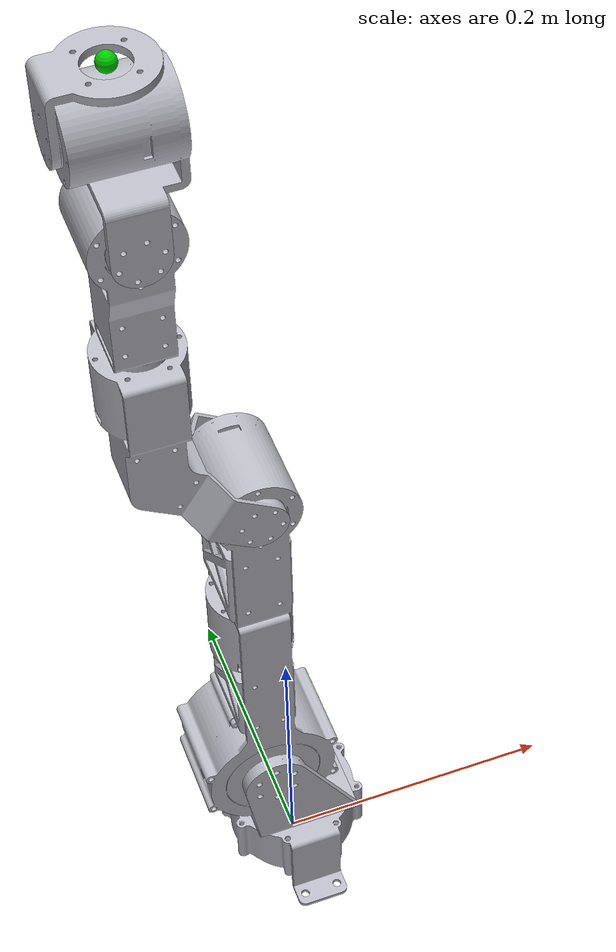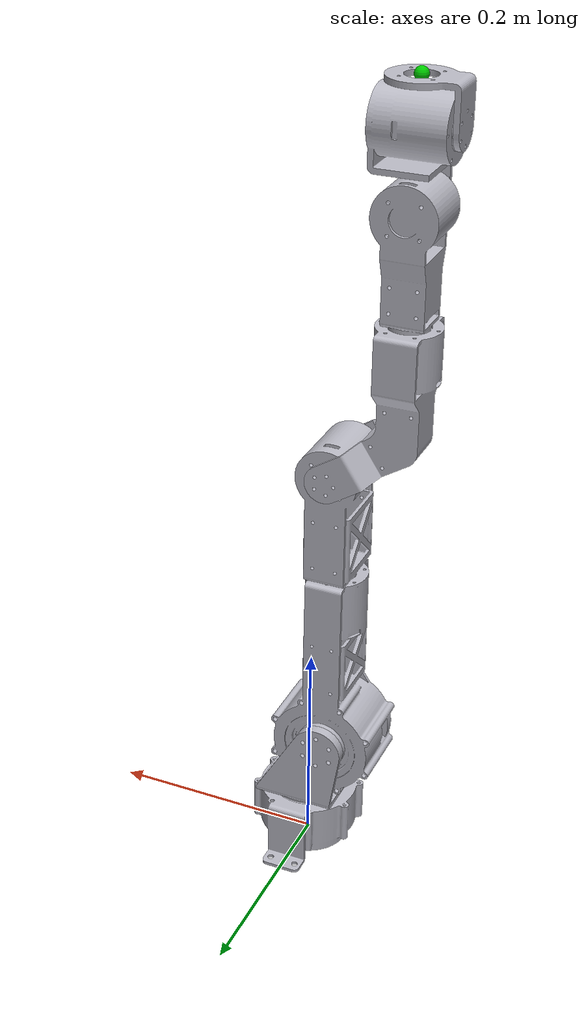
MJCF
<?xml version="1.0" encoding="utf-8"?>
<!-- MJCF model generated from robot.urdf. Distances are metres; angles are radians. -->
<mujoco model="h1arm">
  <!-- URDF rpy uses fixed-axis XYZ rotations. -->
  <compiler angle="radian" eulerseq="XYZ" meshdir="meshes"/>
  <option timestep="0.002" gravity="0 0 -9.81" integrator="implicitfast"/>

  <default>
    <joint damping="1" armature="0.01" limited="true"/>
    <geom type="mesh" contype="1" conaffinity="1" friction="0.8 0.01 0.001" rgba="0.72 0.72 0.76 1"/>
    <position forcelimited="true"/>
  </default>

  <asset>
    <mesh name="base_link_mesh" file="base_link.stl"/>
    <mesh name="Link_1_mesh" file="Link_1.stl"/>
    <mesh name="Link_2_mesh" file="Link_2.stl"/>
    <mesh name="Link_3_mesh" file="Link_3.stl"/>
    <mesh name="Link_4_mesh" file="Link_4.stl"/>
    <mesh name="Link_5_mesh" file="Link_5.stl"/>
    <mesh name="Link_6_mesh" file="Link_6.stl"/>
    <mesh name="Link_7_mesh" file="Link_7.stl"/>
  </asset>

  <worldbody>
    <body name="base_link">
      <inertial pos="0.0000558 -0.00005184 0.03162308" mass="0.92653116"
                fullinertia="0.00120513 0.00083041 0.00142156 0.0000005 0.00000107 -0.00000589"/>
      <geom mesh="base_link_mesh"/>
      <body name="Link_1" pos="0 -0.00001092 0.0566">
        <joint name="Joint_1" type="hinge" axis="0 0 1" range="-3.412 3.142"/>
        <inertial pos="-0.00939786 0.0000704 0.03350522" mass="0.64611621"
                  fullinertia="0.00122572 0.00078899 0.00098172 0.00000064 0.00017373 -0.00000161"/>
        <geom mesh="Link_1_mesh"/>
        <body name="Link_2" pos="-0.0235 0.0325 0.069" euler="-1.57079633 0 0">
          <joint name="Joint_2" type="hinge" axis="0 0 1" range="-1.571 1.571"/>
          <inertial pos="0.00000532 -0.06379929 -0.03408965" mass="2.60709084"
                    fullinertia="0.0149818 0.00230646 0.0150057 0.00000417 0.00000082 0.00026357"/>
          <geom mesh="Link_2_mesh"/>
          <body name="Link_3" pos="-0.00000018 -0.173 -0.03249939" euler="1.57079633 0 0">
            <joint name="Joint_3" type="hinge" axis="0 0 1" range="-3.142 3.142"/>
            <inertial pos="-0.00002259 -0.00043766 0.09074299" mass="1.36209612"
                      fullinertia="0.00228773 0.00202038 0.00082694 0.00000059 0.00000053 0.00001036"/>
            <geom mesh="Link_3_mesh"/>
            <body name="Link_4" pos="0 -0.031 0.108" euler="1.57079633 0 0">
              <joint name="Joint_4" type="hinge" axis="0 0 1" range="-3.142 1.1"/>
              <inertial pos="-0.05223196 0.08041667 -0.03084671" mass="1.76153582"
                        fullinertia="0.00343955 0.0011144 0.00350834 0.00060103 -0.00001215 0.00001858"/>
              <geom mesh="Link_4_mesh"/>
              <body name="Link_5" pos="-0.0570187 0.13799997 -0.031" euler="-1.57079633 0 0">
                <joint name="Joint_5" type="hinge" axis="0 0 1" range="-3.142 3.142"/>
                <inertial pos="-0.00002277 -0.00013572 0.07326344" mass="1.38147901"
                          fullinertia="0.00185077 0.00184019 0.00048462 0.00000058 0.00000078 -0.00001408"/>
                <geom mesh="Link_5_mesh"/>
                <body name="Link_6" pos="0 -0.0235 0.098" euler="1.57079633 0 0">
                  <joint name="Joint_6" type="hinge" axis="0 0 1" range="-2 2"/>
                  <inertial pos="-0.00011233 0.06329954 -0.02121872" mass="1.18994417"
                            fullinertia="0.00092418 0.00067784 0.00099654 0.00002796 -0.0000003 0.00014523"/>
                  <geom mesh="Link_6_mesh"/>
                  <body name="Link_7" pos="-0.0325 0.07046661 -0.0235" euler="-1.57079633 0 1.57079633">
                    <joint name="Joint_7" type="hinge" axis="0 0 1" range="-1.68 1.8"/>
                    <inertial pos="0.02413322 0 -0.01539933" mass="0.12520667"
                              fullinertia="0.00007515 0.00008184 0.00005075 0 0.00002323 0"/>
                    <geom mesh="Link_7_mesh"/>
                    <!-- Fixed URDF end-effector frame, represented as a MuJoCo site. -->
                    <site name="tool_center" pos="0.037 0 -0.0325" euler="-1.57079633 0 -1.57079633"
                          type="sphere" size="0.006" rgba="0 0.8 0 1"/>
                  </body>
                </body>
              </body>
            </body>
          </body>
        </body>
      </body>
    </body>
  </worldbody>

  <actuator>
    <position name="Joint_1_position" joint="Joint_1" ctrlrange="-3.412 3.142" kp="100" forcerange="-30 30"/>
    <position name="Joint_2_position" joint="Joint_2" ctrlrange="-1.571 1.571" kp="300" forcerange="-60 60"/>
    <position name="Joint_3_position" joint="Joint_3" ctrlrange="-3.142 3.142" kp="220" forcerange="-30 30"/>
    <position name="Joint_4_position" joint="Joint_4" ctrlrange="-3.142 1.1" kp="220" forcerange="-30 30"/>
    <position name="Joint_5_position" joint="Joint_5" ctrlrange="-3.142 3.142" kp="120" forcerange="-15 15"/>
    <position name="Joint_6_position" joint="Joint_6" ctrlrange="-2 2" kp="120" forcerange="-15 15"/>
    <position name="Joint_7_position" joint="Joint_7" ctrlrange="-1.68 1.8" kp="80" forcerange="-10 10"/>
  </actuator>
</mujoco>
